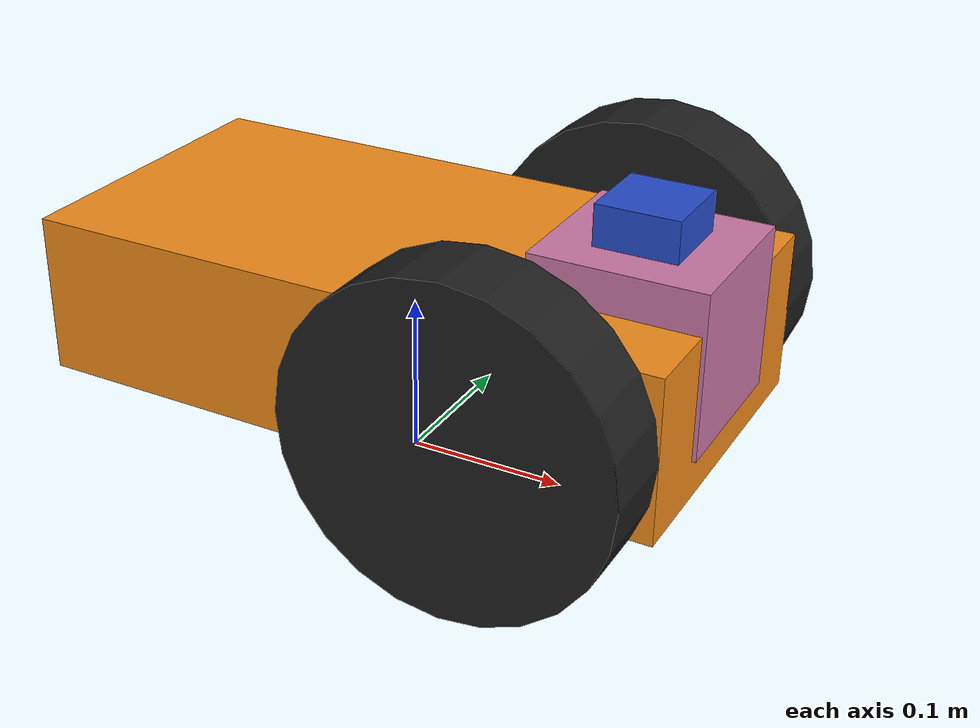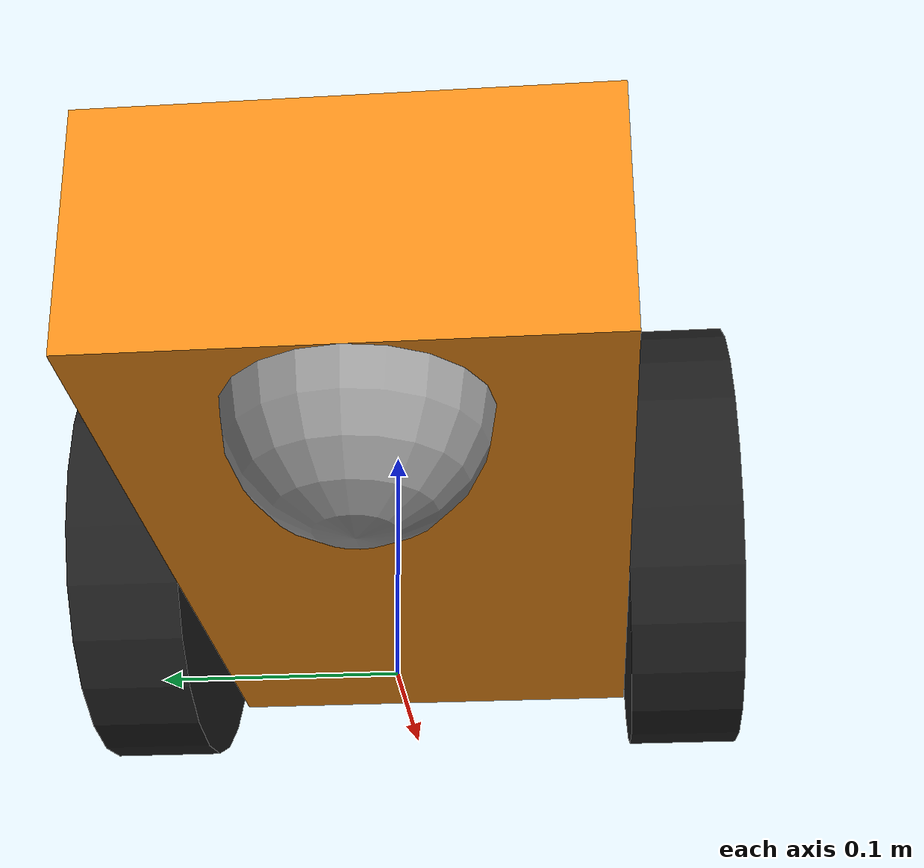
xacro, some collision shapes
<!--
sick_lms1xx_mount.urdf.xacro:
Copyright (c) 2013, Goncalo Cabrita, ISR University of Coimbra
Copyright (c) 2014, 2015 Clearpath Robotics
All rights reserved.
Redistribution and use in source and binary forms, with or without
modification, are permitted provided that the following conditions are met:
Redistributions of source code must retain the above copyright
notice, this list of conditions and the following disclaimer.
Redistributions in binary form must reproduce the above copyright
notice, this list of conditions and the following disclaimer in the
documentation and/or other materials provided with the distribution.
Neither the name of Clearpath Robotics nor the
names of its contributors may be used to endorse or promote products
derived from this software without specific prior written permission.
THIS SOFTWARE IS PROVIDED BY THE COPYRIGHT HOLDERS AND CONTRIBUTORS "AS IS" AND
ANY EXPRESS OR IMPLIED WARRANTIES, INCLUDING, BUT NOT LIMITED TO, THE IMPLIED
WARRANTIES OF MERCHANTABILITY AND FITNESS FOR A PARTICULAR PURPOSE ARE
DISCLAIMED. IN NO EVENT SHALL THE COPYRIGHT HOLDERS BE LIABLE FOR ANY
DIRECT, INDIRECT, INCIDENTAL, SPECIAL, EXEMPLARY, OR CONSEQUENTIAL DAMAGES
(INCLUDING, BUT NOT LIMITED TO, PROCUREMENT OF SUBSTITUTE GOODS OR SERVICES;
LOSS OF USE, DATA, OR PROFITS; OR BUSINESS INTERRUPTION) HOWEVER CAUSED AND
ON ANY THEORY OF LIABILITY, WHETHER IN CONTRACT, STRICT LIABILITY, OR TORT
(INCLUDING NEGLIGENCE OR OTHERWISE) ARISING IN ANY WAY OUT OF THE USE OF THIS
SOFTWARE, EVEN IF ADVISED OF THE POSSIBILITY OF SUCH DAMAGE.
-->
<?xml version="1.0"?>

<robot name="mybot" xmlns:xacro="http://www.ros.org/wiki/xacro">

  <xacro:property name="PI" value="3.1415926535897931"/>

  <xacro:property name="chassisHeight" value="0.1"/>
  <xacro:property name="chassisLength" value="0.4"/>
  <xacro:property name="chassisWidth" value="0.2"/>
  <xacro:property name="chassisMass" value="50"/>

  <xacro:arg name="wheelWidth" default="0.05" />
  <xacro:arg name="wheelRadius" default="0.1" />

  <xacro:property name="wheelWidth" value="$(arg wheelWidth)"/>
  <xacro:property name="wheelRadius" value="$(arg wheelRadius)"/>
  <xacro:property name="wheelPos" value="0.2"/>
  <!-- calculates the mass of a wheel using the mass density from sample project -->
  <xacro:property name="wheelMass" value="${10000 * wheelRadius * wheelRadius * wheelWidth}"/>

  <xacro:property name="casterRadius" value="${wheelRadius - chassisHeight / 2}"/>
  <!-- calculates the mass of the caster wheel using the mass density from sample project -->
  <xacro:property name="casterMass" value="${40000 * casterRadius * casterRadius * casterRadius}"/>

  <xacro:property name="cameraSize" value="0.05"/>
  <xacro:property name="cameraMass" value="0.1"/>

  <xacro:arg name="robot_color" default="Orange"/>

  <xacro:include filename="$(find mybot_description)/urdf/mybot.gazebo" />
  <xacro:include filename="$(find mybot_description)/urdf/materials.xacro" />
  <xacro:include filename="$(find mybot_description)/urdf/macros.xacro" />

  <link name="footprint" />

  <joint name="base_joint" type="fixed">
    <parent link="footprint"/>
    <child link="chassis"/>
  </joint>

  <link name="chassis">
    <collision>
      <origin xyz="0 0 ${wheelRadius}" rpy="0 0 0"/>
      <geometry>
       <box size="${chassisLength} ${chassisWidth} ${chassisHeight}"/>
     </geometry>
   </collision>

   <visual>
    <origin xyz="0 0 ${wheelRadius}" rpy="0 0 0"/>
    <geometry>
     <box size="${chassisLength} ${chassisWidth} ${chassisHeight}"/>
   </geometry>
   <material name="$(arg robot_color)"/>
 </visual>

 <inertial>
  <origin xyz="0 0 ${wheelRadius}" rpy="0 0 0"/>
  <mass value="${chassisMass}"/>
  <box_inertia m="${chassisMass}" x="${chassisLength}" y="${chassisWidth}" z="${chassisHeight}"/>
</inertial>
</link>

<joint name="fixed" type="fixed">
  <parent link="chassis"/>
  <child link="caster_wheel"/>
</joint>

<link name="caster_wheel">

  <collision>
    <origin xyz="${casterRadius-chassisLength/2} 0 ${casterRadius}" rpy="0 0 0"/>
    <geometry>
     <sphere radius="${casterRadius}"/>
   </geometry>
 </collision>

 <visual>
    <origin xyz="${casterRadius-chassisLength/2} 0 ${casterRadius}" rpy="0 0 0"/>
  <geometry>
   <sphere radius="${casterRadius}"/>
 </geometry>
</visual>

<inertial>
    <origin xyz="${casterRadius-chassisLength/2} 0 ${casterRadius}" rpy="0 0 0"/>
  <mass value="${casterMass}"/>
  <sphere_inertia m="${casterMass}" r="${casterRadius}"/>
</inertial>
</link>

<wheel lr="left" tY="-1"/>
<wheel lr="right" tY="1"/>

<joint name="camera_joint" type="fixed">
  <origin xyz="${-cameraSize+chassisLength/2} 0 ${cameraSize+wheelRadius+cameraSize/2}" rpy="0 0 0"/>
  <parent link="chassis"/>
  <child link="camera"/>
</joint>

<link name="camera">
  <collision>
    <origin xyz="0 0 0" rpy="0 0 0"/>
    <geometry>
     <box size="${cameraSize} ${cameraSize} ${cameraSize}"/>
   </geometry>
 </collision>

 <visual>
  <origin xyz="0 0 0" rpy="0 0 0"/>
  <geometry>
   <box size="${cameraSize} ${cameraSize} ${cameraSize}"/>
 </geometry>
 <material name="Blue"/>
</visual>

<inertial>
  <mass value="${cameraMass}" />
  <origin xyz="0 0 0" rpy="0 0 0"/>
  <box_inertia m="${cameraMass}" x="${cameraSize}" y="${cameraSize}" z="${cameraSize}" />
</inertial>
</link>

<!-- FRONT LASER -->
<xacro:include filename="$(find mybot_description)/urdf/sick_lms1xx_mount.urdf.xacro" />
<sick_lms1xx_mount prefix="front"
 topic="mybot/front_laser/scan"/>

 <joint name="front_laser_mount_joint" type="fixed">
  <origin xyz="0 0 0"
    rpy="0 0 0" />
    <parent link="camera" />
    <child link="front_laser_mount" />
  </joint>

</robot>

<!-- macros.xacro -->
<robot>
     <macro name="cylinder_inertia" params="m r h">
        <inertia  ixx="${m*(3*r*r+h*h)/12}" ixy = "0" ixz = "0"
                  iyy="${m*(3*r*r+h*h)/12}" iyz = "0"
                  izz="${m*r*r/2}" />
      </macro>

      <macro name="box_inertia" params="m x y z">
        <inertia  ixx="${m*(y*y+z*z)/12}" ixy = "0" ixz = "0"
                  iyy="${m*(x*x+z*z)/12}" iyz = "0"
                  izz="${m*(x*x+z*z)/12}" />
      </macro>

      <macro name="sphere_inertia" params="m r">
        <inertia  ixx="${2*m*r*r/5}" ixy = "0" ixz = "0"
                  iyy="${2*m*r*r/5}" iyz = "0"
                  izz="${2*m*r*r/5}" />
      </macro>

     <macro name="wheel" params="lr tY">

       <link name="${lr}_wheel">
        <collision>
          <origin xyz="0 0 0" rpy="${PI/2} 0 0"/>
          <geometry>
           <cylinder length="${wheelWidth}" radius="${wheelRadius}"/>
          </geometry>
        </collision>

        <visual>

          <origin xyz="0 0 0" rpy="${PI/2} 0 0"/>
          <geometry>
           <cylinder length="${wheelWidth}" radius="${wheelRadius}"/>
          </geometry>
          <material name="Black"/>
        </visual>

        <inertial>
          <origin xyz="0 0 0" rpy="${PI/2} 0 0"/>
          <mass value="${wheelMass}"/>
          <cylinder_inertia m="${wheelMass}" r="${wheelRadius}" h="${wheelWidth}"/>
        </inertial>
       </link>

        <gazebo reference="${lr}_wheel">
          <mu1 value="1.0"/>
          <mu2 value="1.0"/>
          <kp  value="10000000.0" />
          <kd  value="1.0" />
          <fdir1 value="1 0 0"/>
          <material>Gazebo/Black</material>
        </gazebo>

       <joint name="${lr}_wheel_hinge" type="continuous">
          <parent link="chassis"/>
          <child link="${lr}_wheel"/>
          <origin xyz="${+wheelPos-chassisLength/4} ${tY*wheelWidth/2+tY*chassisWidth/2} ${wheelRadius}" rpy="0 0 0" />
          <axis xyz="0 1 0" rpy="0 0 0" />
          <limit effort="100" velocity="100"/>
          <joint_properties damping="0.0" friction="0.0"/>
        </joint>

      <transmission name="${lr}_trans">
        <type>transmission_interface/SimpleTransmission</type>
        <joint name="${lr}_wheel_hinge">
          <hardwareInterface>EffortJointInterface</hardwareInterface>
        </joint>
        <actuator name="${lr}Motor">
          <hardwareInterface>EffortJointInterface</hardwareInterface>
          <mechanicalReduction>10</mechanicalReduction>
        </actuator>
      </transmission>

     </macro>
</robot>

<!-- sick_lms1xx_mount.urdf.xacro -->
<robot xmlns:xacro="http://ros.org/wiki/xacro">

  <xacro:include filename="$(find lms1xx)/urdf/sick_lms1xx.urdf.xacro" />

  <xacro:macro name="sick_lms1xx_mount" params="prefix topic">

    <sick_lms1xx frame="${prefix}_laser" topic="${topic}" />

    <link name="${prefix}_laser_mount">
    </link>

    <joint name="${prefix}_laser_joint" type="fixed">
      <!-- This offset is from the base of the bracket to the LIDAR's focal point. -->
      <origin xyz="0 0 0" rpy="0 0 0" />
      <parent link="${prefix}_laser_mount" />
      <child link="${prefix}_laser" />
    </joint>

    <gazebo reference="${prefix}_laser_mount">
      <material>Gazebo/DarkGrey</material>
    </gazebo>

  </xacro:macro>

</robot>

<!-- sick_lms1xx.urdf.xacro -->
<robot xmlns:xacro="http://www.ros.org/wiki/xacro">

  <xacro:macro name="sick_lms1xx" params="frame:=laser topic:=scan sample_size:=720 update_rate:=5
               min_angle:=-2.35619 max_angle:=2.35619 min_range:=0.1 max_range:=30.0 robot_namespace:=/" >
    <link name="${frame}">
      <inertial>
        <mass value="1.1" />
        <origin xyz="0 0 0" />
        <inertia ixx="${0.0833333 * 1.1 * (0.102*0.102 + 0.152*0.152)}" ixy="0.0" ixz="0.0"
          iyy="${0.0833333 * 1.1 * (0.105*0.105 + 0.152*0.152)}" iyz="0.0"
          izz="${0.0833333 * 1.1 * (0.105*0.105 + 0.102*0.102)}" />
      </inertial>
      <visual>
        <origin xyz="0 0 0" rpy="0 0 0" />
        <geometry>
          <!-- Origin of this mesh is the focal point of the LIDAR. -->
          <mesh filename="file://$(find lms1xx)/meshes/sick-lms1xx.dae" />
        </geometry>
      </visual>
      <collision>
        <origin xyz="0 0 -0.05" rpy="0 0 0" />
        <geometry>
          <box size="0.105 0.1 0.1" />
        </geometry>
      </collision>
    </link>

    <gazebo reference="${frame}">
      <turnGravityOff>true</turnGravityOff>
      <sensor type="ray" name="${frame}">
        <pose>0 0 0 0 0 0</pose>
        <visualize>false</visualize>
        <update_rate>${update_rate}</update_rate>
        <ray>
          <scan>
            <horizontal>
              <samples>${sample_size}</samples>
              <resolution>1</resolution>
              <min_angle>${min_angle}</min_angle>
              <max_angle>${max_angle}</max_angle>
            </horizontal>
          </scan>
          <range>
            <min>${min_range}</min>
            <max>${max_range}</max>
            <resolution>0.01</resolution>
          </range>
          <noise>
            <type>gaussian</type>
            <mean>0.0</mean>
            <stddev>0.001</stddev>
          </noise>
        </ray>
        <plugin name="${frame}_scan" filename="libgazebo_ros_ray_sensor.so">
          <ros>
            <remapping>~/out:=${topic}</remapping>
            <qos>
              <topic name="${topic}">
                  <publisher>
                      <reliability>best_effort</reliability>
                  </publisher>
              </topic>
            </qos>
          </ros>
          <frame_name>${frame}</frame_name>
          <robot_namespace>${robot_namespace}</robot_namespace>
          <output_type>sensor_msgs/LaserScan</output_type>
        </plugin>
      </sensor>
    </gazebo>

  </xacro:macro>
</robot>
